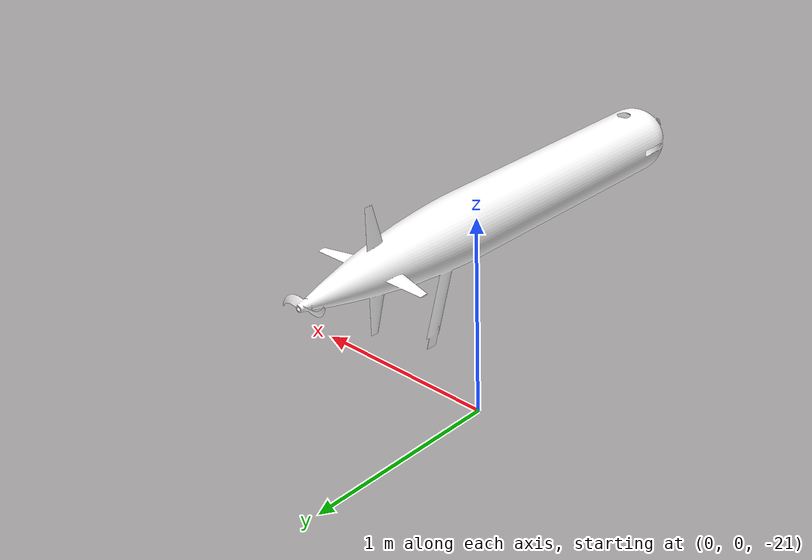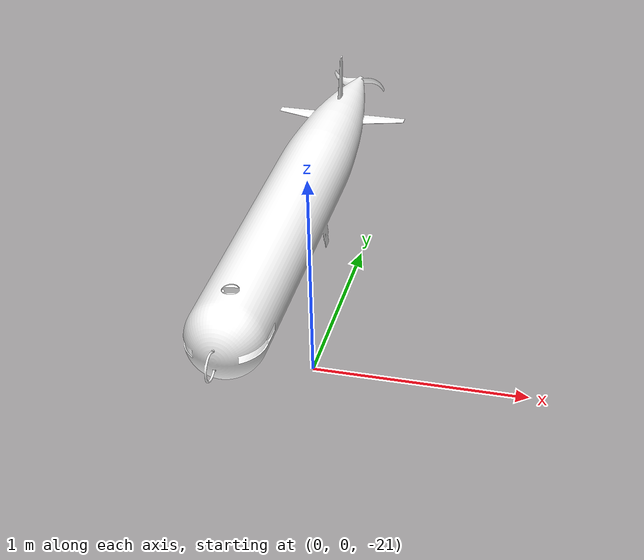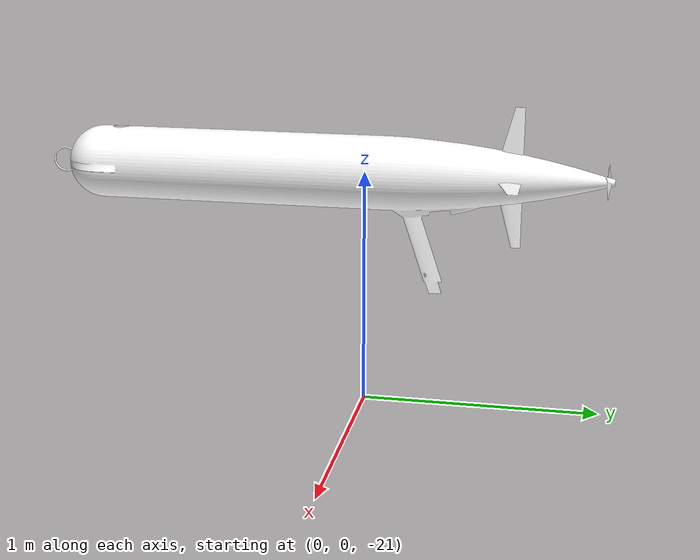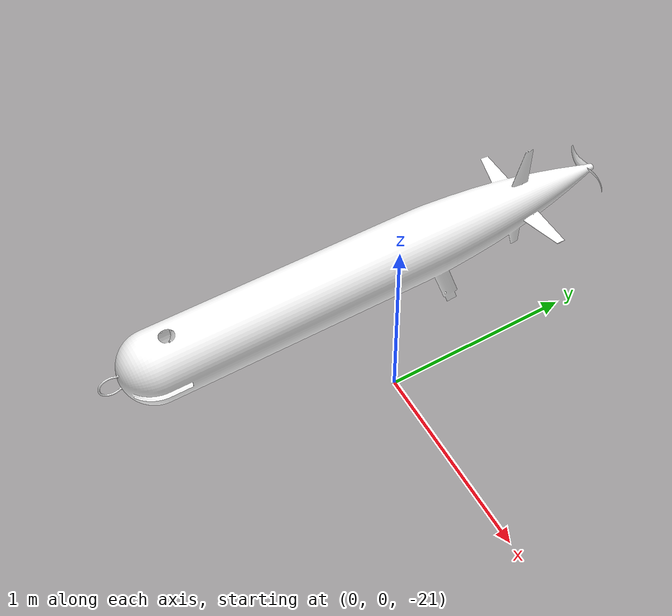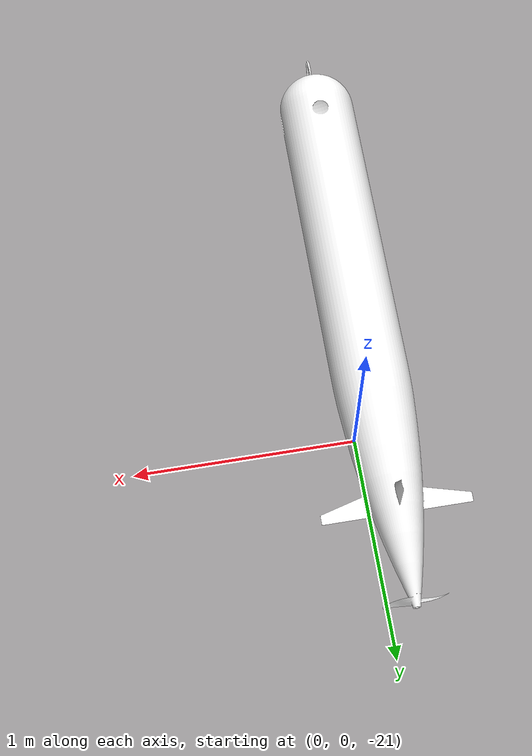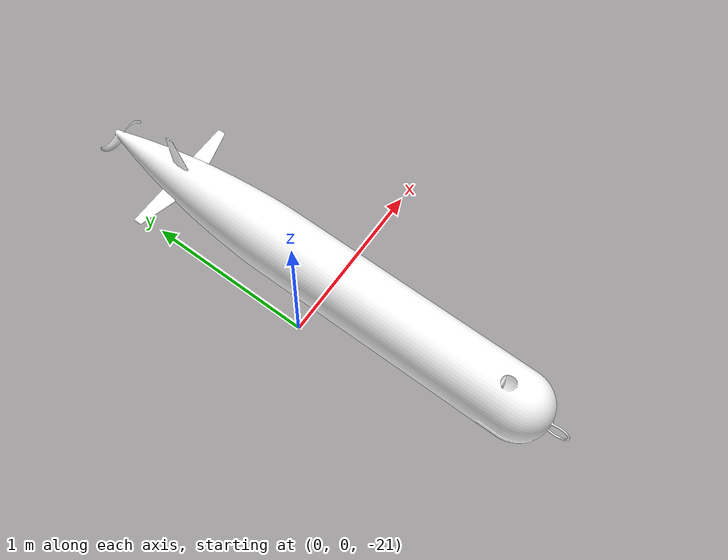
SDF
<?xml version="1.0" ?>
<sdf version="1.6">
  <world name="empty_environment">

    <scene>
      <ambient>1.0 1.0 1.0 1.0</ambient>
      <background>0.0 0.7 0.8</background>
    </scene>

    <physics name="1ms" type="dart">
      <max_step_size>0.001</max_step_size>
      <real_time_factor>1.0</real_time_factor>
    </physics>

    <light type="directional" name="sun">
      <cast_shadows>false</cast_shadows>
      <pose>0 0 10 0 0 0</pose>
      <diffuse>1 1 1 1</diffuse>
      <specular>0.5 0.5 0.5 1</specular>
      <attenuation>
        <range>1000</range>
        <constant>0.9</constant>
        <linear>0.01</linear>
        <quadratic>0.001</quadratic>
      </attenuation>
      <direction>-0.5 0.1 -0.9</direction>
    </light>

    <plugin filename="gz-sim-physics-system"
      name="gz::sim::systems::Physics">
    </plugin>

    <plugin
      filename="gz-sim-sensors-system"
      name="gz::sim::systems::Sensors">
    </plugin>

    <plugin filename="gz-sim-buoyancy-system"
      name="gz::sim::systems::Buoyancy">
      <graded_buoyancy>
        <default_density>1025</default_density>
        <density_change>
          <above_depth>0</above_depth>
          <density>1.125</density>
        </density_change>
      </graded_buoyancy>
    </plugin>

    <plugin filename="gz-sim-user-commands-system"
      name="gz::sim::systems::UserCommands">
    </plugin>

    <plugin filename="gz-sim-scene-broadcaster-system"
      name="gz::sim::systems::SceneBroadcaster">
    </plugin>

    <include>
      <pose>0 0 -20 0 0 0</pose>
      <uri>tethys_equipped</uri>
    </include>
  </world>
</sdf>

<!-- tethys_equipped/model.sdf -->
<sdf version="1.9">
  <model name="tethys">
    <enable_wind>true</enable_wind>
    <include merge="true">
      <pose degrees="true">0 0 0 0 0 -90</pose>
      <uri>tethys</uri>

      <plugin filename="gz-sim-joint-position-controller-system"
        name="gz::sim::systems::JointPositionController">
        <joint_name>horizontal_fins_joint</joint_name>
        <p_gain>0.1</p_gain>
      </plugin>

      <plugin filename="gz-sim-joint-position-controller-system"
        name="gz::sim::systems::JointPositionController">
        <joint_name>vertical_fins_joint</joint_name>
        <p_gain>0.1</p_gain>
      </plugin>

      <plugin filename="gz-sim-thruster-system"
        name="gz::sim::systems::Thruster">
        <namespace>tethys</namespace>
        <joint_name>propeller_joint</joint_name>
        <thrust_coefficient>0.004422</thrust_coefficient>
        <fluid_density>1025</fluid_density>
        <propeller_diameter>0.2</propeller_diameter>
      </plugin>

      <plugin filename="gz-sim-lift-drag-system"
        name="gz::sim::systems::LiftDrag">
        <air_density>1025</air_density>
        <cla>4.13</cla>
        <cla_stall>-1.1</cla_stall>
        <cda>0.2</cda>
        <cda_stall>0.03</cda_stall>
        <alpha_stall>0.17</alpha_stall>
        <a0>0</a0>
        <area>0.0244</area>
        <upward>0 1 0</upward>
        <forward>-1 0 0</forward>
        <link_name>vertical_fins</link_name>
        <cp>0 0 0</cp>
      </plugin>

      <plugin filename="gz-sim-lift-drag-system"
        name="gz::sim::systems::LiftDrag">
        <air_density>1025</air_density>
        <cla>4.13</cla>
        <cla_stall>-1.1</cla_stall>
        <cda>0.2</cda>
        <cda_stall>0.03</cda_stall>
        <alpha_stall>0.17</alpha_stall>
        <a0>0</a0>
        <area>0.0244</area>
        <upward>0 0 1</upward>
        <forward>-1 0 0</forward>
        <link_name>horizontal_fins</link_name>
        <cp>0 0 0</cp>
      </plugin>

      <plugin filename="HydrodynamicsPlugin"
        name="tethys::HydrodynamicsPlugin">
        <link_name>base_link</link_name>
        <enable_coriolis>false</enable_coriolis>
        <xDotU>-4.876161</xDotU>
        <yDotV>-126.324739</yDotV>
        <zDotW>-126.324739</zDotW>
        <kDotP>0</kDotP>
        <mDotQ>-33.46</mDotQ>
        <nDotR>-33.46</nDotR>
        <xUU>-6.2282</xUU>
        <xU>0</xU>
        <yVV>-601.27</yVV>
        <yV>0</yV>
        <zWW>-601.27</zWW>
        <zW>0</zW>
        <kPP>-0.1916</kPP>
        <kP>0</kP>
        <mQQ>-632.698957</mQQ>
        <mQ>0</mQ>
        <nRR>-632.698957</nRR>
        <nR>0</nR>
      </plugin>

      <plugin filename="NavigationPlugin"
        name="tethys::NavigationPlugin">
      </plugin>

    </include>
  </model>
</sdf>

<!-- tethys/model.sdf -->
<sdf version="1.6">
  <model name="tethys">
    <enable_wind>true</enable_wind>

    <link name="base_link">
      <inertial>

        <pose>0.0 0 0 0 0 0 </pose>

        <mass>147.8671</mass>

        <inertia>
          <ixx>3.000000</ixx>
          <ixy>0</ixy>
          <ixz>0</ixz>
          <iyy>41.980233</iyy>
          <iyz>0</iyz>
          <izz>41.980233</izz>

        </inertia>
      </inertial>

      <collision name="main_body_buoyancy"><pose>0 0 0.007 0 0 0 </pose><geometry><box><size>2.0 0.4 0.18032573170731706 </size></box></geometry></collision>

      <visual name="visual">
        <geometry>
          <mesh>
            <uri>meshes/tethys.dae</uri>
            <submesh>
              <name>Body</name>
              <center>false</center>
            </submesh>
          </mesh>
        </geometry>
        <material>
          <diffuse>1.0 1.0 1.0 1.0</diffuse>
          <specular>1.0 1.0 1.0 1.0</specular>
          <pbr>
            <metal>
              <albedo_map>materials/textures/Tethys_Albedo.png</albedo_map>
              <normal_map>materials/textures/Tethys_Normal.png</normal_map>
              <metalness_map>materials/textures/Tethys_Metalness.png</metalness_map>
              <roughness_map>materials/textures/Tethys_Roughness.png</roughness_map>
            </metal>
          </pbr>
          <script>
            <uri>materials/scripts/</uri>
            <uri>materials/textures/</uri>
            <name>tethys/Tethys_Diffuse</name>
          </script>
        </material>
      </visual>
    </link>

    <link name="horizontal_fins">
      <pose>1.05 0 0 0 0 0</pose>
      <inertial>
        <mass>0.2</mass>
        <inertia>
          <ixx>0.0007924568755</ixx>
          <ixy>-0.0000000002674</ixy>
          <ixz>0.0003978158176</ixz>
          <iyy>0.0010546736475</iyy>
          <iyz>-0.0000000006729</iyz>
          <izz>0.0002633558262</izz>
        </inertia>
      </inertial>

      <collision name="horizontal_fins_buoyancy"><geometry><box><size>0.1 0.1 0.019512195121951216 </size></box></geometry></collision>

      <visual name="visual">
        <pose>-1.05 0 0 0 0 0</pose>
        <geometry>
          <mesh>
            <uri>meshes/tethys.dae</uri>
            <submesh>
              <name>Fins_Horizontal</name>
              <center>false</center>
            </submesh>
          </mesh>
        </geometry>
        <material>
          <diffuse>1.0 1.0 1.0</diffuse>
          <specular>1.0 1.0 1.0</specular>
          <pbr>
            <metal>
              <albedo_map>materials/textures/Tethys_Albedo.png</albedo_map>
              <normal_map>materials/textures/Tethys_Normal.png</normal_map>
              <metalness_map>materials/textures/Tethys_Metalness.png</metalness_map>
              <roughness_map>materials/textures/Tethys_Roughness.png</roughness_map>
            </metal>
          </pbr>
          <script>
            <uri>materials/scripts/</uri>
            <uri>materials/textures/</uri>
            <name>tethys/Tethys_Diffuse</name>
          </script>
        </material>
      </visual>
    </link>

    <link name="vertical_fins">
      <pose>1.05 0 0 0 0 0</pose>
      <inertial>
        <mass>0.2</mass>
        <inertia>
          <ixx>0.0007924568755</ixx>
          <ixy>-0.0000000002674</ixy>
          <ixz>0.0003978158176</ixz>
          <iyy>0.0010546736475</iyy>
          <iyz>-0.0000000006729</iyz>
          <izz>0.0002633558262</izz>
        </inertia>
      </inertial>

      <collision name="vertical_fin_buoyancy"><geometry><box><size>0.1 0.1 0.019512195121951216 </size></box></geometry></collision>

      <visual name="visual">
        <pose>-1.05 0 0 0 0 0</pose>
        <geometry>
          <mesh>
            <uri>meshes/tethys.dae</uri>
            <submesh>
              <name>Fins_vertical</name>
              <center>false</center>
            </submesh>
          </mesh>
        </geometry>
        <material>
          <diffuse>1.0 1.0 1.0</diffuse>
          <specular>1.0 1.0 1.0</specular>
          <pbr>
            <metal>
              <albedo_map>materials/textures/Tethys_Albedo.png</albedo_map>
              <normal_map>materials/textures/Tethys_Normal.png</normal_map>
              <metalness_map>materials/textures/Tethys_Metalness.png</metalness_map>
              <roughness_map>materials/textures/Tethys_Roughness.png</roughness_map>
            </metal>
          </pbr>
          <script>
            <uri>materials/scripts/</uri>
            <uri>materials/textures/</uri>
            <name>tethys/Tethys_Diffuse</name>
          </script>
        </material>
      </visual>
    </link>

    <link name="propeller">
      <pose>1.43162 0 0 0 0 0</pose>
      <inertial>
        <pose>0 0 0 0 0 0</pose>
        <mass>0.09</mass>
        <inertia>
          <ixx>0.000143971303</ixx>
          <ixy>0.000000000008</ixy>
          <ixz>-0.000000000224</ixz>
          <iyy>0.000140915448</iyy>
          <iyz>-0.000025236433</iyz>
          <izz>0.000033571862</izz>
        </inertia>
      </inertial>

      <collision name="propeller_buoyancy"><geometry><box><size>0.1 0.1 0.008780487804878046 </size></box></geometry></collision>

      <visual name="visual">
        <pose>-1.43162 0 0 0 0 0</pose>
        <geometry>
          <mesh>
            <uri>meshes/tethys.dae</uri>
            <submesh>
              <name>Prop</name>
              <center>false</center>
            </submesh>
          </mesh>
        </geometry>
        <material>
          <diffuse>1.0 1.0 1.0</diffuse>
          <specular>1.0 1.0 1.0</specular>
          <pbr>
            <metal>
              <albedo_map>materials/textures/Tethys_Albedo.png</albedo_map>
              <normal_map>materials/textures/Tethys_Normal.png</normal_map>
              <metalness_map>materials/textures/Tethys_Metalness.png</metalness_map>
              <roughness_map>materials/textures/Tethys_Roughness.png</roughness_map>
            </metal>
          </pbr>
          <script>
            <uri>materials/scripts/</uri>
            <uri>materials/textures/</uri>
            <name>tethys/Tethys_Diffuse</name>
          </script>
        </material>
      </visual>
    </link>

    <joint name="horizontal_fins_joint" type="revolute">
      <pose>0 0 0 0 0 0</pose>
      <parent>base_link</parent>
      <child>horizontal_fins</child>
      <axis>
        <xyz>0 1 0</xyz>
        <limit>
          <lower>-0.261799</lower>
          <upper>0.261799</upper>
          <effort>-1</effort>
          <velocity>-1</velocity>
        </limit>
      </axis>
    </joint>

    <joint name="vertical_fins_joint" type="revolute">
      <pose degrees="true">0 0 0   180 0 0</pose>
      <parent>base_link</parent>
      <child>vertical_fins</child>
      <axis>
        <xyz>0 0 1</xyz>
        <limit>
          <lower>-0.261799</lower>
          <upper>0.261799</upper>
          <effort>-1</effort>
          <velocity>-1</velocity>
        </limit>
      </axis>
    </joint>

    <joint name="propeller_joint" type="revolute">
      <pose degrees="true">0 0 0   0 0 0</pose>
      <parent>base_link</parent>
      <child>propeller</child>
      <axis>
        <xyz>1 0 0</xyz>
        <limit>
          <lower>-1e+12</lower>
          <upper>1e+12</upper>
          <effort>1e6</effort>
          <velocity>-1</velocity>
        </limit>
      </axis>
    </joint>

    <link name="lidar_link">
      <pose>-0.5 0 0.1 0 0 0</pose>

        <inertial>
          <mass>0.1</mass>
          <inertia>
            <ixx>0.0001</ixx><ixy>0</ixy><ixz>0</ixz>
            <iyy>0.0001</iyy><iyz>0</iyz>
            <izz>0.0001</izz>
          </inertia>
        </inertial>

        <collision name="lidar_buoyancy"><geometry><box><size>0.1 0.1 0.009756097560975608 </size></box></geometry></collision>

      <sensor name="gpu_lidar" type="gpu_lidar">
        <topic>/tethys/lidar</topic>
        <update_rate>10</update_rate>
        <always_on>true</always_on>
        <visualize>true</visualize>
        <lidar>
          <scan>
            <horizontal>
              <samples>72</samples>
              <resolution>1</resolution>
              <min_angle>-3.14159</min_angle>
              <max_angle>3.14159</max_angle>
            </horizontal>
            <vertical>
              <samples>4</samples>
              <resolution>1</resolution>
              <min_angle>-0.2618</min_angle>
              <max_angle>0.2618</max_angle>
            </vertical>
          </scan>
          <range>
            <min>0.3</min>
            <max>30.0</max>
            <resolution>0.01</resolution>
          </range>
          <noise>
            <type>gaussian</type>
            <mean>0.0</mean>
            <stddev>0.01</stddev>
          </noise>
        </lidar>
      </sensor>
    </link>

    <joint name="lidar_joint" type="fixed">
      <parent>base_link</parent>
      <child>lidar_link</child>
    </joint>

    </model>
</sdf>
